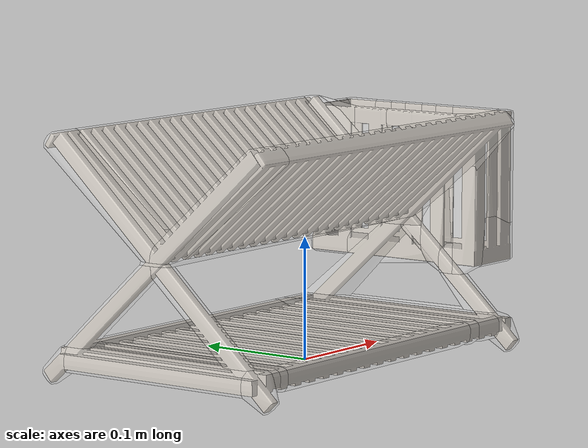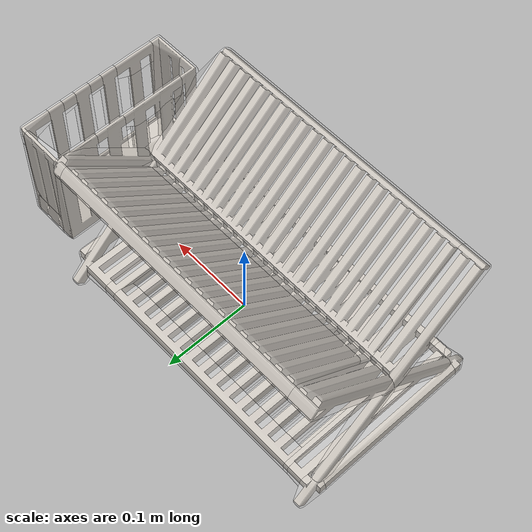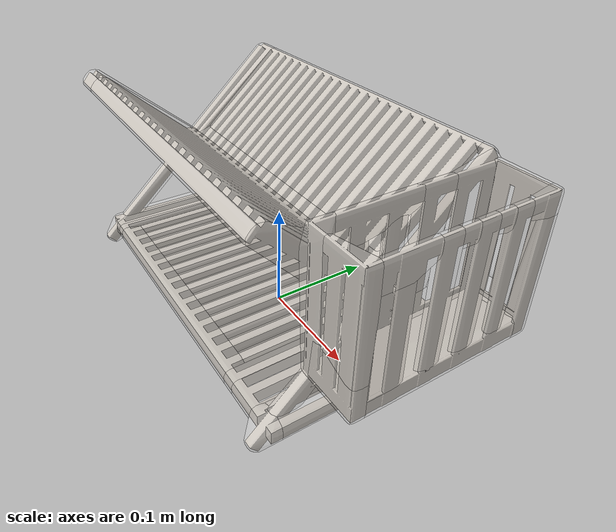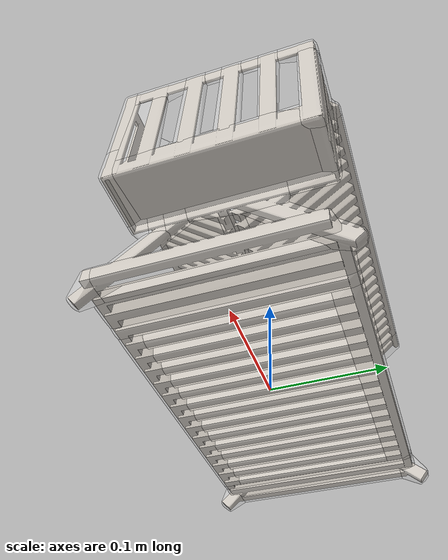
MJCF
<?xml version='1.0' encoding='utf-8'?>
<mujoco model="model">
  <compiler angle="radian" />
  <asset>
    <mesh file="visual/DishRack044.obj" name="DishRack044_vis" />
    <texture file="visual/T_DishRack044_BC001.png" name="DishRack044_material" type="2d" />
    <material name="DishRack044_material" rgba="1 1 1 1.0" texture="DishRack044_material" shininess="0.4472135901451111" specular="0.3103448502657381" />
    <mesh file="collision/collision_mesh_collision_0.obj" name="DishRack044_collision_mesh_0" />
    <mesh file="collision/collision_mesh_collision_1.obj" name="DishRack044_collision_mesh_1" />
    <mesh file="collision/collision_mesh_collision_2.obj" name="DishRack044_collision_mesh_2" />
    <mesh file="collision/collision_mesh_collision_3.obj" name="DishRack044_collision_mesh_3" />
    <mesh file="collision/collision_mesh_collision_4.obj" name="DishRack044_collision_mesh_4" />
    <mesh file="collision/collision_mesh_collision_5.obj" name="DishRack044_collision_mesh_5" />
    <mesh file="collision/collision_mesh_collision_6.obj" name="DishRack044_collision_mesh_6" />
    <mesh file="collision/collision_mesh_collision_7.obj" name="DishRack044_collision_mesh_7" />
    <mesh file="collision/collision_mesh_collision_8.obj" name="DishRack044_collision_mesh_8" />
    <mesh file="collision/collision_mesh_collision_9.obj" name="DishRack044_collision_mesh_9" />
    <mesh file="collision/collision_mesh_collision_10.obj" name="DishRack044_collision_mesh_10" />
    <mesh file="collision/collision_mesh_collision_11.obj" name="DishRack044_collision_mesh_11" />
    <mesh file="collision/collision_mesh_collision_12.obj" name="DishRack044_collision_mesh_12" />
    <mesh file="collision/collision_mesh_collision_13.obj" name="DishRack044_collision_mesh_13" />
    <mesh file="collision/collision_mesh_collision_14.obj" name="DishRack044_collision_mesh_14" />
    <mesh file="collision/collision_mesh_collision_15.obj" name="DishRack044_collision_mesh_15" />
    <mesh file="collision/collision_mesh_collision_16.obj" name="DishRack044_collision_mesh_16" />
    <mesh file="collision/collision_mesh_collision_17.obj" name="DishRack044_collision_mesh_17" />
    <mesh file="collision/collision_mesh_collision_18.obj" name="DishRack044_collision_mesh_18" />
    <mesh file="collision/collision_mesh_collision_19.obj" name="DishRack044_collision_mesh_19" />
    <mesh file="collision/collision_mesh_collision_20.obj" name="DishRack044_collision_mesh_20" />
    <mesh file="collision/collision_mesh_collision_21.obj" name="DishRack044_collision_mesh_21" />
    <mesh file="collision/collision_mesh_collision_22.obj" name="DishRack044_collision_mesh_22" />
    <mesh file="collision/collision_mesh_collision_23.obj" name="DishRack044_collision_mesh_23" />
    <mesh file="collision/collision_mesh_collision_24.obj" name="DishRack044_collision_mesh_24" />
    <mesh file="collision/collision_mesh_collision_25.obj" name="DishRack044_collision_mesh_25" />
    <mesh file="collision/collision_mesh_collision_26.obj" name="DishRack044_collision_mesh_26" />
    <mesh file="collision/collision_mesh_collision_27.obj" name="DishRack044_collision_mesh_27" />
    <mesh file="collision/collision_mesh_collision_28.obj" name="DishRack044_collision_mesh_28" />
    <mesh file="collision/collision_mesh_collision_29.obj" name="DishRack044_collision_mesh_29" />
    <mesh file="collision/collision_mesh_collision_30.obj" name="DishRack044_collision_mesh_30" />
    <mesh file="collision/collision_mesh_collision_31.obj" name="DishRack044_collision_mesh_31" />
    <mesh file="collision/collision_mesh_collision_32.obj" name="DishRack044_collision_mesh_32" />
    <mesh file="collision/collision_mesh_collision_33.obj" name="DishRack044_collision_mesh_33" />
    <mesh file="collision/collision_mesh_collision_34.obj" name="DishRack044_collision_mesh_34" />
    <mesh file="collision/collision_mesh_collision_35.obj" name="DishRack044_collision_mesh_35" />
    <mesh file="collision/collision_mesh_collision_36.obj" name="DishRack044_collision_mesh_36" />
    <mesh file="collision/collision_mesh_collision_37.obj" name="DishRack044_collision_mesh_37" />
    <mesh file="collision/collision_mesh_collision_38.obj" name="DishRack044_collision_mesh_38" />
    <mesh file="collision/collision_mesh_collision_39.obj" name="DishRack044_collision_mesh_39" />
    <mesh file="collision/collision_mesh_collision_40.obj" name="DishRack044_collision_mesh_40" />
    <mesh file="collision/collision_mesh_collision_41.obj" name="DishRack044_collision_mesh_41" />
    <mesh file="collision/collision_mesh_collision_42.obj" name="DishRack044_collision_mesh_42" />
    <mesh file="collision/collision_mesh_collision_43.obj" name="DishRack044_collision_mesh_43" />
    <mesh file="collision/collision_mesh_collision_44.obj" name="DishRack044_collision_mesh_44" />
    <mesh file="collision/collision_mesh_collision_45.obj" name="DishRack044_collision_mesh_45" />
    <mesh file="collision/collision_mesh_collision_46.obj" name="DishRack044_collision_mesh_46" />
    <mesh file="collision/collision_mesh_collision_47.obj" name="DishRack044_collision_mesh_47" />
    <mesh file="collision/collision_mesh_collision_48.obj" name="DishRack044_collision_mesh_48" />
    <mesh file="collision/collision_mesh_collision_49.obj" name="DishRack044_collision_mesh_49" />
    <mesh file="collision/collision_mesh_collision_50.obj" name="DishRack044_collision_mesh_50" />
    <mesh file="collision/collision_mesh_collision_51.obj" name="DishRack044_collision_mesh_51" />
    <mesh file="collision/collision_mesh_collision_52.obj" name="DishRack044_collision_mesh_52" />
    <mesh file="collision/collision_mesh_collision_53.obj" name="DishRack044_collision_mesh_53" />
    <mesh file="collision/collision_mesh_collision_54.obj" name="DishRack044_collision_mesh_54" />
    <mesh file="collision/collision_mesh_collision_55.obj" name="DishRack044_collision_mesh_55" />
    <mesh file="collision/collision_mesh_collision_56.obj" name="DishRack044_collision_mesh_56" />
    <mesh file="collision/collision_mesh_collision_57.obj" name="DishRack044_collision_mesh_57" />
    <mesh file="collision/collision_mesh_collision_58.obj" name="DishRack044_collision_mesh_58" />
    <mesh file="collision/collision_mesh_collision_59.obj" name="DishRack044_collision_mesh_59" />
    <mesh file="collision/collision_mesh_collision_60.obj" name="DishRack044_collision_mesh_60" />
    <mesh file="collision/collision_mesh_collision_61.obj" name="DishRack044_collision_mesh_61" />
    <mesh file="collision/collision_mesh_collision_62.obj" name="DishRack044_collision_mesh_62" />
    <mesh file="collision/collision_mesh_collision_63.obj" name="DishRack044_collision_mesh_63" />
    </asset>
  <default>
    <default class="visual">
      <geom conaffinity="0" contype="0" group="1" type="mesh" density="100" />
      </default>
    <default class="collision">
      <geom group="0" rgba="1 1 1 0.25" density="100" solimp="0.95 0.98 0.001" solref="0.004 1" />
      </default>
    <default class="region">
      <geom group="1" conaffinity="0" contype="0" rgba="0 1 0 0" />
      </default>
    </default>
  <worldbody>
    <body>
      <body name="object">
        <geom mesh="DishRack044_vis" type="mesh" class="visual" material="DishRack044_material" />
        <geom mesh="DishRack044_collision_mesh_0" type="mesh" class="collision" />
        <geom mesh="DishRack044_collision_mesh_1" type="mesh" class="collision" />
        <geom mesh="DishRack044_collision_mesh_2" type="mesh" class="collision" />
        <geom mesh="DishRack044_collision_mesh_3" type="mesh" class="collision" />
        <geom mesh="DishRack044_collision_mesh_4" type="mesh" class="collision" />
        <geom mesh="DishRack044_collision_mesh_5" type="mesh" class="collision" />
        <geom mesh="DishRack044_collision_mesh_6" type="mesh" class="collision" />
        <geom mesh="DishRack044_collision_mesh_7" type="mesh" class="collision" />
        <geom mesh="DishRack044_collision_mesh_8" type="mesh" class="collision" />
        <geom mesh="DishRack044_collision_mesh_9" type="mesh" class="collision" />
        <geom mesh="DishRack044_collision_mesh_10" type="mesh" class="collision" />
        <geom mesh="DishRack044_collision_mesh_11" type="mesh" class="collision" />
        <geom mesh="DishRack044_collision_mesh_12" type="mesh" class="collision" />
        <geom mesh="DishRack044_collision_mesh_13" type="mesh" class="collision" />
        <geom mesh="DishRack044_collision_mesh_14" type="mesh" class="collision" />
        <geom mesh="DishRack044_collision_mesh_15" type="mesh" class="collision" />
        <geom mesh="DishRack044_collision_mesh_16" type="mesh" class="collision" />
        <geom mesh="DishRack044_collision_mesh_17" type="mesh" class="collision" />
        <geom mesh="DishRack044_collision_mesh_18" type="mesh" class="collision" />
        <geom mesh="DishRack044_collision_mesh_19" type="mesh" class="collision" />
        <geom mesh="DishRack044_collision_mesh_20" type="mesh" class="collision" />
        <geom mesh="DishRack044_collision_mesh_21" type="mesh" class="collision" />
        <geom mesh="DishRack044_collision_mesh_22" type="mesh" class="collision" />
        <geom mesh="DishRack044_collision_mesh_23" type="mesh" class="collision" />
        <geom mesh="DishRack044_collision_mesh_24" type="mesh" class="collision" />
        <geom mesh="DishRack044_collision_mesh_25" type="mesh" class="collision" />
        <geom mesh="DishRack044_collision_mesh_26" type="mesh" class="collision" />
        <geom mesh="DishRack044_collision_mesh_27" type="mesh" class="collision" />
        <geom mesh="DishRack044_collision_mesh_28" type="mesh" class="collision" />
        <geom mesh="DishRack044_collision_mesh_29" type="mesh" class="collision" />
        <geom mesh="DishRack044_collision_mesh_30" type="mesh" class="collision" />
        <geom mesh="DishRack044_collision_mesh_31" type="mesh" class="collision" />
        <geom mesh="DishRack044_collision_mesh_32" type="mesh" class="collision" />
        <geom mesh="DishRack044_collision_mesh_33" type="mesh" class="collision" />
        <geom mesh="DishRack044_collision_mesh_34" type="mesh" class="collision" />
        <geom mesh="DishRack044_collision_mesh_35" type="mesh" class="collision" />
        <geom mesh="DishRack044_collision_mesh_36" type="mesh" class="collision" />
        <geom mesh="DishRack044_collision_mesh_37" type="mesh" class="collision" />
        <geom mesh="DishRack044_collision_mesh_38" type="mesh" class="collision" />
        <geom mesh="DishRack044_collision_mesh_39" type="mesh" class="collision" />
        <geom mesh="DishRack044_collision_mesh_40" type="mesh" class="collision" />
        <geom mesh="DishRack044_collision_mesh_41" type="mesh" class="collision" />
        <geom mesh="DishRack044_collision_mesh_42" type="mesh" class="collision" />
        <geom mesh="DishRack044_collision_mesh_43" type="mesh" class="collision" />
        <geom mesh="DishRack044_collision_mesh_44" type="mesh" class="collision" />
        <geom mesh="DishRack044_collision_mesh_45" type="mesh" class="collision" />
        <geom mesh="DishRack044_collision_mesh_46" type="mesh" class="collision" />
        <geom mesh="DishRack044_collision_mesh_47" type="mesh" class="collision" />
        <geom mesh="DishRack044_collision_mesh_48" type="mesh" class="collision" />
        <geom mesh="DishRack044_collision_mesh_49" type="mesh" class="collision" />
        <geom mesh="DishRack044_collision_mesh_50" type="mesh" class="collision" />
        <geom mesh="DishRack044_collision_mesh_51" type="mesh" class="collision" />
        <geom mesh="DishRack044_collision_mesh_52" type="mesh" class="collision" />
        <geom mesh="DishRack044_collision_mesh_53" type="mesh" class="collision" />
        <geom mesh="DishRack044_collision_mesh_54" type="mesh" class="collision" />
        <geom mesh="DishRack044_collision_mesh_55" type="mesh" class="collision" />
        <geom mesh="DishRack044_collision_mesh_56" type="mesh" class="collision" />
        <geom mesh="DishRack044_collision_mesh_57" type="mesh" class="collision" />
        <geom mesh="DishRack044_collision_mesh_58" type="mesh" class="collision" />
        <geom mesh="DishRack044_collision_mesh_59" type="mesh" class="collision" />
        <geom mesh="DishRack044_collision_mesh_60" type="mesh" class="collision" />
        <geom mesh="DishRack044_collision_mesh_61" type="mesh" class="collision" />
        <geom mesh="DishRack044_collision_mesh_62" type="mesh" class="collision" />
        <geom mesh="DishRack044_collision_mesh_63" type="mesh" class="collision" />
        <geom class="region" name="reg_bbox" type="box" pos="-0.001009999999999997 -0.0012064999999999992 0.0980655" size="0.2 0.1142855 0.1009525" />
        <geom class="region" name="reg_int_0" type="box" pos="-0.025 -0.003255732 0.063" size="0.15 0.1 0.031"/>
        <geom class="region" name="reg_int_1" type="box" pos="-0.034601897 -0.000981301 0.201" size="0.15 0.04 0.05" />
        <geom class="region" name="reg_int_2" type="box" pos="0.17 0.02 0.133" size="0.02 0.06 0.05" />
        </body>
      </body>
    </worldbody>
  </mujoco>
